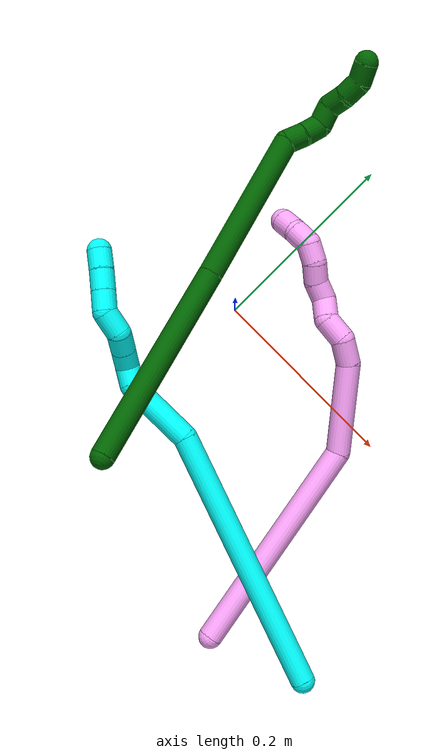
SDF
<sdf version="1.7">
 <world name="default">
  <model name="3">
   <static>0</static>
   <link name="3">
    <collision name="collision-cylinder-e_1_1_4">
     <pose>-0.076578 0.07604 -0.08519 -2.41288 -0.590733 1.34679</pose>
     <geometry><cylinder><radius>0.0125</radius><length>0.27498</length></cylinder></geometry>
     <surface>
      <friction><ode><mu>1.16</mu><mu2>1.16</mu2><slip1>0</slip1><slip2>0</slip2></ode></friction>
      <contact><ode><kp>1e+06</kp><kd>1</kd><max_vel>0</max_vel><min_depth>0.001</min_depth></ode></contact>
     </surface>
    </collision>
    <visual name="visual-cylinder-e_1_1_4">
     <pose>-0.076578 0.07604 -0.08519 -2.41288 -0.590733 1.34679</pose>
     <geometry><cylinder><radius>0.0125</radius><length>0.27498</length></cylinder></geometry>
     <material><ambient>0.003922 1 0.996078 1</ambient></material>
    </visual>
    <collision name="collision-cylinder-e_2_4_5">
     <pose>-0.167015 0.182428 -0.186576 -2.06104 -0.382999 0.625258</pose>
     <geometry><cylinder><radius>0.0125</radius><length>0.074173</length></cylinder></geometry>
     <surface>
      <friction><ode><mu>1.16</mu><mu2>1.16</mu2><slip1>0</slip1><slip2>0</slip2></ode></friction>
      <contact><ode><kp>1e+06</kp><kd>1</kd><max_vel>0</max_vel><min_depth>0.001</min_depth></ode></contact>
     </surface>
    </collision>
    <visual name="visual-cylinder-e_2_4_5">
     <pose>-0.167015 0.182428 -0.186576 -2.06104 -0.382999 0.625258</pose>
     <geometry><cylinder><radius>0.0125</radius><length>0.074173</length></cylinder></geometry>
     <material><ambient>0.003922 1 0.996078 1</ambient></material>
    </visual>
    <collision name="collision-cylinder-e_3_5_6">
     <pose>-0.188558 0.217229 -0.208081 -2.44352 -0.837008 1.77007</pose>
     <geometry><cylinder><radius>0.0125</radius><length>0.020694</length></cylinder></geometry>
     <surface>
      <friction><ode><mu>1.16</mu><mu2>1.16</mu2><slip1>0</slip1><slip2>0</slip2></ode></friction>
      <contact><ode><kp>1e+06</kp><kd>1</kd><max_vel>0</max_vel><min_depth>0.001</min_depth></ode></contact>
     </surface>
    </collision>
    <visual name="visual-cylinder-e_3_5_6">
     <pose>-0.188558 0.217229 -0.208081 -2.44352 -0.837008 1.77007</pose>
     <geometry><cylinder><radius>0.0125</radius><length>0.020694</length></cylinder></geometry>
     <material><ambient>0.003922 1 0.996078 1</ambient></material>
    </visual>
    <collision name="collision-cylinder-e_4_6_7">
     <pose>-0.198718 0.222928 -0.223744 -3.02193 -0.233095 2.19572</pose>
     <geometry><cylinder><radius>0.0125</radius><length>0.021438</length></cylinder></geometry>
     <surface>
      <friction><ode><mu>1.16</mu><mu2>1.16</mu2><slip1>0</slip1><slip2>0</slip2></ode></friction>
      <contact><ode><kp>1e+06</kp><kd>1</kd><max_vel>0</max_vel><min_depth>0.001</min_depth></ode></contact>
     </surface>
    </collision>
    <visual name="visual-cylinder-e_4_6_7">
     <pose>-0.198718 0.222928 -0.223744 -3.02193 -0.233095 2.19572</pose>
     <geometry><cylinder><radius>0.0125</radius><length>0.021438</length></cylinder></geometry>
     <material><ambient>0.003922 1 0.996078 1</ambient></material>
    </visual>
    <collision name="collision-cylinder-e_5_7_8">
     <pose>-0.20347 0.225459 -0.244186 -3.01475 -0.220138 2.09845</pose>
     <geometry><cylinder><radius>0.0125</radius><length>0.020843</length></cylinder></geometry>
     <surface>
      <friction><ode><mu>1.16</mu><mu2>1.16</mu2><slip1>0</slip1><slip2>0</slip2></ode></friction>
      <contact><ode><kp>1e+06</kp><kd>1</kd><max_vel>0</max_vel><min_depth>0.001</min_depth></ode></contact>
     </surface>
    </collision>
    <visual name="visual-cylinder-e_5_7_8">
     <pose>-0.20347 0.225459 -0.244186 -3.01475 -0.220138 2.09845</pose>
     <geometry><cylinder><radius>0.0125</radius><length>0.020843</length></cylinder></geometry>
     <material><ambient>0.003922 1 0.996078 1</ambient></material>
    </visual>
    <collision name="collision-cylinder-e_6_8_9">
     <pose>-0.210575 0.234311 -0.262698 -2.4098 -0.403171 0.979971</pose>
     <geometry><cylinder><radius>0.0125</radius><length>0.024616</length></cylinder></geometry>
     <surface>
      <friction><ode><mu>1.16</mu><mu2>1.16</mu2><slip1>0</slip1><slip2>0</slip2></ode></friction>
      <contact><ode><kp>1e+06</kp><kd>1</kd><max_vel>0</max_vel><min_depth>0.001</min_depth></ode></contact>
     </surface>
    </collision>
    <visual name="visual-cylinder-e_6_8_9">
     <pose>-0.210575 0.234311 -0.262698 -2.4098 -0.403171 0.979971</pose>
     <geometry><cylinder><radius>0.0125</radius><length>0.024616</length></cylinder></geometry>
     <material><ambient>0.003922 1 0.996078 1</ambient></material>
    </visual>
    <collision name="collision-cylinder-e_7_9_10">
     <pose>-0.224362 0.245024 -0.275867 -2.55603 -1.00441 2.13758</pose>
     <geometry><cylinder><radius>0.0125</radius><length>0.021232</length></cylinder></geometry>
     <surface>
      <friction><ode><mu>1.16</mu><mu2>1.16</mu2><slip1>0</slip1><slip2>0</slip2></ode></friction>
      <contact><ode><kp>1e+06</kp><kd>1</kd><max_vel>0</max_vel><min_depth>0.001</min_depth></ode></contact>
     </surface>
    </collision>
    <visual name="visual-cylinder-e_7_9_10">
     <pose>-0.224362 0.245024 -0.275867 -2.55603 -1.00441 2.13758</pose>
     <geometry><cylinder><radius>0.0125</radius><length>0.021232</length></cylinder></geometry>
     <material><ambient>0.003922 1 0.996078 1</ambient></material>
    </visual>
    <collision name="collision-cylinder-e_8_10_11">
     <pose>-0.242226 0.251381 -0.285479 -2.55833 -0.991393 2.12801</pose>
     <geometry><cylinder><radius>0.0125</radius><length>0.021287</length></cylinder></geometry>
     <surface>
      <friction><ode><mu>1.16</mu><mu2>1.16</mu2><slip1>0</slip1><slip2>0</slip2></ode></friction>
      <contact><ode><kp>1e+06</kp><kd>1</kd><max_vel>0</max_vel><min_depth>0.001</min_depth></ode></contact>
     </surface>
    </collision>
    <visual name="visual-cylinder-e_8_10_11">
     <pose>-0.242226 0.251381 -0.285479 -2.55833 -0.991393 2.12801</pose>
     <geometry><cylinder><radius>0.0125</radius><length>0.021287</length></cylinder></geometry>
     <material><ambient>0.003922 1 0.996078 1</ambient></material>
    </visual>
    <collision name="collision-cylinder-e_9_11_2">
     <pose>-0.259922 0.258246 -0.294453 -2.4147 -1.01165 1.93813</pose>
     <geometry><cylinder><radius>0.0125</radius><length>0.020738</length></cylinder></geometry>
     <surface>
      <friction><ode><mu>1.16</mu><mu2>1.16</mu2><slip1>0</slip1><slip2>0</slip2></ode></friction>
      <contact><ode><kp>1e+06</kp><kd>1</kd><max_vel>0</max_vel><min_depth>0.001</min_depth></ode></contact>
     </surface>
    </collision>
    <visual name="visual-cylinder-e_9_11_2">
     <pose>-0.259922 0.258246 -0.294453 -2.4147 -1.01165 1.93813</pose>
     <geometry><cylinder><radius>0.0125</radius><length>0.020738</length></cylinder></geometry>
     <material><ambient>0.003922 1 0.996078 1</ambient></material>
    </visual>
    <collision name="collision-sphere-2">
     <pose>-0.268712 0.261901 -0.298563 0 -0 0</pose>
     <geometry><sphere><radius>0.0125</radius></sphere></geometry>
     <surface>
      <friction><ode><mu>1.16</mu><mu2>1.16</mu2><slip1>0</slip1><slip2>0</slip2></ode></friction>
      <contact><ode><kp>1e+06</kp><kd>1</kd><max_vel>0</max_vel><min_depth>0.001</min_depth></ode></contact>
     </surface>
    </collision>
    <visual name="visual-sphere-2">
     <pose>-0.268712 0.261901 -0.298563 0 -0 0</pose>
     <geometry><sphere><radius>0.0125</radius></sphere></geometry>
     <material><ambient>0.003922 1 0.996078 1</ambient></material>
    </visual>
    <collision name="collision-sphere-11">
     <pose>-0.251132 0.254591 -0.290343 0 -0 0</pose>
     <geometry><sphere><radius>0.0125</radius></sphere></geometry>
     <surface>
      <friction><ode><mu>1.16</mu><mu2>1.16</mu2><slip1>0</slip1><slip2>0</slip2></ode></friction>
      <contact><ode><kp>1e+06</kp><kd>1</kd><max_vel>0</max_vel><min_depth>0.001</min_depth></ode></contact>
     </surface>
    </collision>
    <visual name="visual-sphere-11">
     <pose>-0.251132 0.254591 -0.290343 0 -0 0</pose>
     <geometry><sphere><radius>0.0125</radius></sphere></geometry>
     <material><ambient>0.003922 1 0.996078 1</ambient></material>
    </visual>
    <collision name="collision-sphere-10">
     <pose>-0.23332 0.248172 -0.280615 0 -0 0</pose>
     <geometry><sphere><radius>0.0125</radius></sphere></geometry>
     <surface>
      <friction><ode><mu>1.16</mu><mu2>1.16</mu2><slip1>0</slip1><slip2>0</slip2></ode></friction>
      <contact><ode><kp>1e+06</kp><kd>1</kd><max_vel>0</max_vel><min_depth>0.001</min_depth></ode></contact>
     </surface>
    </collision>
    <visual name="visual-sphere-10">
     <pose>-0.23332 0.248172 -0.280615 0 -0 0</pose>
     <geometry><sphere><radius>0.0125</radius></sphere></geometry>
     <material><ambient>0.003922 1 0.996078 1</ambient></material>
    </visual>
    <collision name="collision-sphere-9">
     <pose>-0.215403 0.241876 -0.27112 0 -0 0</pose>
     <geometry><sphere><radius>0.0125</radius></sphere></geometry>
     <surface>
      <friction><ode><mu>1.16</mu><mu2>1.16</mu2><slip1>0</slip1><slip2>0</slip2></ode></friction>
      <contact><ode><kp>1e+06</kp><kd>1</kd><max_vel>0</max_vel><min_depth>0.001</min_depth></ode></contact>
     </surface>
    </collision>
    <visual name="visual-sphere-9">
     <pose>-0.215403 0.241876 -0.27112 0 -0 0</pose>
     <geometry><sphere><radius>0.0125</radius></sphere></geometry>
     <material><ambient>0.003922 1 0.996078 1</ambient></material>
    </visual>
    <collision name="collision-sphere-4">
     <pose>-0.153156 0.15208 -0.170379 0 -0 0</pose>
     <geometry><sphere><radius>0.0125</radius></sphere></geometry>
     <surface>
      <friction><ode><mu>1.16</mu><mu2>1.16</mu2><slip1>0</slip1><slip2>0</slip2></ode></friction>
      <contact><ode><kp>1e+06</kp><kd>1</kd><max_vel>0</max_vel><min_depth>0.001</min_depth></ode></contact>
     </surface>
    </collision>
    <visual name="visual-sphere-4">
     <pose>-0.153156 0.15208 -0.170379 0 -0 0</pose>
     <geometry><sphere><radius>0.0125</radius></sphere></geometry>
     <material><ambient>0.003922 1 0.996078 1</ambient></material>
    </visual>
    <collision name="collision-sphere-1">
     <geometry><sphere><radius>0.0125</radius></sphere></geometry>
     <surface>
      <friction><ode><mu>1.16</mu><mu2>1.16</mu2><slip1>0</slip1><slip2>0</slip2></ode></friction>
      <contact><ode><kp>1e+06</kp><kd>1</kd><max_vel>0</max_vel><min_depth>0.001</min_depth></ode></contact>
     </surface>
    </collision>
    <visual name="visual-sphere-1">
     <geometry><sphere><radius>0.0125</radius></sphere></geometry>
     <material><ambient>0.003922 1 0.996078 1</ambient></material>
    </visual>
    <collision name="collision-sphere-8">
     <pose>-0.205746 0.226746 -0.254275 0 -0 0</pose>
     <geometry><sphere><radius>0.0125</radius></sphere></geometry>
     <surface>
      <friction><ode><mu>1.16</mu><mu2>1.16</mu2><slip1>0</slip1><slip2>0</slip2></ode></friction>
      <contact><ode><kp>1e+06</kp><kd>1</kd><max_vel>0</max_vel><min_depth>0.001</min_depth></ode></contact>
     </surface>
    </collision>
    <visual name="visual-sphere-8">
     <pose>-0.205746 0.226746 -0.254275 0 -0 0</pose>
     <geometry><sphere><radius>0.0125</radius></sphere></geometry>
     <material><ambient>0.003922 1 0.996078 1</ambient></material>
    </visual>
    <collision name="collision-sphere-5">
     <pose>-0.180874 0.212775 -0.202772 0 -0 0</pose>
     <geometry><sphere><radius>0.0125</radius></sphere></geometry>
     <surface>
      <friction><ode><mu>1.16</mu><mu2>1.16</mu2><slip1>0</slip1><slip2>0</slip2></ode></friction>
      <contact><ode><kp>1e+06</kp><kd>1</kd><max_vel>0</max_vel><min_depth>0.001</min_depth></ode></contact>
     </surface>
    </collision>
    <visual name="visual-sphere-5">
     <pose>-0.180874 0.212775 -0.202772 0 -0 0</pose>
     <geometry><sphere><radius>0.0125</radius></sphere></geometry>
     <material><ambient>0.003922 1 0.996078 1</ambient></material>
    </visual>
    <collision name="collision-sphere-6">
     <pose>-0.196242 0.221683 -0.213389 0 -0 0</pose>
     <geometry><sphere><radius>0.0125</radius></sphere></geometry>
     <surface>
      <friction><ode><mu>1.16</mu><mu2>1.16</mu2><slip1>0</slip1><slip2>0</slip2></ode></friction>
      <contact><ode><kp>1e+06</kp><kd>1</kd><max_vel>0</max_vel><min_depth>0.001</min_depth></ode></contact>
     </surface>
    </collision>
    <visual name="visual-sphere-6">
     <pose>-0.196242 0.221683 -0.213389 0 -0 0</pose>
     <geometry><sphere><radius>0.0125</radius></sphere></geometry>
     <material><ambient>0.003922 1 0.996078 1</ambient></material>
    </visual>
    <collision name="collision-sphere-7">
     <pose>-0.201194 0.224173 -0.234098 0 -0 0</pose>
     <geometry><sphere><radius>0.0125</radius></sphere></geometry>
     <surface>
      <friction><ode><mu>1.16</mu><mu2>1.16</mu2><slip1>0</slip1><slip2>0</slip2></ode></friction>
      <contact><ode><kp>1e+06</kp><kd>1</kd><max_vel>0</max_vel><min_depth>0.001</min_depth></ode></contact>
     </surface>
    </collision>
    <visual name="visual-sphere-7">
     <pose>-0.201194 0.224173 -0.234098 0 -0 0</pose>
     <geometry><sphere><radius>0.0125</radius></sphere></geometry>
     <material><ambient>0.003922 1 0.996078 1</ambient></material>
    </visual>
    <inertial>
     <pose>-0.132684 0.140182 -0.151927 0 -0 0</pose>
     <mass>0.5</mass>
     <inertia><ixx>0.001766</ixx><ixy>0</ixy><ixz>0</ixz><iyy>0.001801</iyy><iyz>0</iyz><izz>-3e-05</izz></inertia>
    </inertial>
   </link>
   <pose>0.316294 -0.217285 0.029011 -2.84912 -0.573774 -1.12468</pose>
  </model>
  <model name="4">
   <static>0</static>
   <link name="4">
    <collision name="collision-cylinder-e_1_1_4">
     <pose>-0.030234 0.098643 0.050803 -1.0952 -0.266031 0.162832</pose>
     <geometry><cylinder><radius>0.0125</radius><length>0.230003</length></cylinder></geometry>
     <surface>
      <friction><ode><mu>1.16</mu><mu2>1.16</mu2><slip1>0</slip1><slip2>0</slip2></ode></friction>
      <contact><ode><kp>1e+06</kp><kd>1</kd><max_vel>0</max_vel><min_depth>0.001</min_depth></ode></contact>
     </surface>
    </collision>
    <visual name="visual-cylinder-e_1_1_4">
     <pose>-0.030234 0.098643 0.050803 -1.0952 -0.266031 0.162832</pose>
     <geometry><cylinder><radius>0.0125</radius><length>0.230003</length></cylinder></geometry>
     <material><ambient>1 0.65098 0.996078 1</ambient></material>
    </visual>
    <collision name="collision-cylinder-e_2_4_5">
     <pose>-0.093665 0.22336 0.121831 -0.911065 -0.788375 0.402049</pose>
     <geometry><cylinder><radius>0.0125</radius><length>0.093615</length></cylinder></geometry>
     <surface>
      <friction><ode><mu>1.16</mu><mu2>1.16</mu2><slip1>0</slip1><slip2>0</slip2></ode></friction>
      <contact><ode><kp>1e+06</kp><kd>1</kd><max_vel>0</max_vel><min_depth>0.001</min_depth></ode></contact>
     </surface>
    </collision>
    <visual name="visual-cylinder-e_2_4_5">
     <pose>-0.093665 0.22336 0.121831 -0.911065 -0.788375 0.402049</pose>
     <geometry><cylinder><radius>0.0125</radius><length>0.093615</length></cylinder></geometry>
     <material><ambient>1 0.65098 0.996078 1</ambient></material>
    </visual>
    <collision name="collision-cylinder-e_3_5_6">
     <pose>-0.138952 0.252771 0.146995 -0.594214 -1.11276 0.37632</pose>
     <geometry><cylinder><radius>0.0125</radius><length>0.026959</length></cylinder></geometry>
     <surface>
      <friction><ode><mu>1.16</mu><mu2>1.16</mu2><slip1>0</slip1><slip2>0</slip2></ode></friction>
      <contact><ode><kp>1e+06</kp><kd>1</kd><max_vel>0</max_vel><min_depth>0.001</min_depth></ode></contact>
     </surface>
    </collision>
    <visual name="visual-cylinder-e_3_5_6">
     <pose>-0.138952 0.252771 0.146995 -0.594214 -1.11276 0.37632</pose>
     <geometry><cylinder><radius>0.0125</radius><length>0.026959</length></cylinder></geometry>
     <material><ambient>1 0.65098 0.996078 1</ambient></material>
    </visual>
    <collision name="collision-cylinder-e_4_6_7">
     <pose>-0.163405 0.257361 0.149875 -2.59537 -1.37825 2.48613</pose>
     <geometry><cylinder><radius>0.0125</radius><length>0.025191</length></cylinder></geometry>
     <surface>
      <friction><ode><mu>1.16</mu><mu2>1.16</mu2><slip1>0</slip1><slip2>0</slip2></ode></friction>
      <contact><ode><kp>1e+06</kp><kd>1</kd><max_vel>0</max_vel><min_depth>0.001</min_depth></ode></contact>
     </surface>
    </collision>
    <visual name="visual-cylinder-e_4_6_7">
     <pose>-0.163405 0.257361 0.149875 -2.59537 -1.37825 2.48613</pose>
     <geometry><cylinder><radius>0.0125</radius><length>0.025191</length></cylinder></geometry>
     <material><ambient>1 0.65098 0.996078 1</ambient></material>
    </visual>
    <collision name="collision-cylinder-e_5_7_8">
     <pose>-0.183651 0.266767 0.145635 -1.83206 -0.751251 0.949</pose>
     <geometry><cylinder><radius>0.0125</radius><length>0.023099</length></cylinder></geometry>
     <surface>
      <friction><ode><mu>1.16</mu><mu2>1.16</mu2><slip1>0</slip1><slip2>0</slip2></ode></friction>
      <contact><ode><kp>1e+06</kp><kd>1</kd><max_vel>0</max_vel><min_depth>0.001</min_depth></ode></contact>
     </surface>
    </collision>
    <visual name="visual-cylinder-e_5_7_8">
     <pose>-0.183651 0.266767 0.145635 -1.83206 -0.751251 0.949</pose>
     <geometry><cylinder><radius>0.0125</radius><length>0.023099</length></cylinder></geometry>
     <material><ambient>1 0.65098 0.996078 1</ambient></material>
    </visual>
    <collision name="collision-cylinder-e_6_8_9">
     <pose>-0.201484 0.276512 0.145778 -0.600474 -1.29494 0.459961</pose>
     <geometry><cylinder><radius>0.0125</radius><length>0.020681</length></cylinder></geometry>
     <surface>
      <friction><ode><mu>1.16</mu><mu2>1.16</mu2><slip1>0</slip1><slip2>0</slip2></ode></friction>
      <contact><ode><kp>1e+06</kp><kd>1</kd><max_vel>0</max_vel><min_depth>0.001</min_depth></ode></contact>
     </surface>
    </collision>
    <visual name="visual-cylinder-e_6_8_9">
     <pose>-0.201484 0.276512 0.145778 -0.600474 -1.29494 0.459961</pose>
     <geometry><cylinder><radius>0.0125</radius><length>0.020681</length></cylinder></geometry>
     <material><ambient>1 0.65098 0.996078 1</ambient></material>
    </visual>
    <collision name="collision-cylinder-e_7_9_10">
     <pose>-0.219685 0.281166 0.153049 -0.554285 -0.956736 0.292898</pose>
     <geometry><cylinder><radius>0.0125</radius><length>0.020193</length></cylinder></geometry>
     <surface>
      <friction><ode><mu>1.16</mu><mu2>1.16</mu2><slip1>0</slip1><slip2>0</slip2></ode></friction>
      <contact><ode><kp>1e+06</kp><kd>1</kd><max_vel>0</max_vel><min_depth>0.001</min_depth></ode></contact>
     </surface>
    </collision>
    <visual name="visual-cylinder-e_7_9_10">
     <pose>-0.219685 0.281166 0.153049 -0.554285 -0.956736 0.292898</pose>
     <geometry><cylinder><radius>0.0125</radius><length>0.020193</length></cylinder></geometry>
     <material><ambient>1 0.65098 0.996078 1</ambient></material>
    </visual>
    <collision name="collision-cylinder-e_8_10_11">
     <pose>-0.23726 0.287542 0.159776 -1.07787 -1.18718 0.76704</pose>
     <geometry><cylinder><radius>0.0125</radius><length>0.020107</length></cylinder></geometry>
     <surface>
      <friction><ode><mu>1.16</mu><mu2>1.16</mu2><slip1>0</slip1><slip2>0</slip2></ode></friction>
      <contact><ode><kp>1e+06</kp><kd>1</kd><max_vel>0</max_vel><min_depth>0.001</min_depth></ode></contact>
     </surface>
    </collision>
    <visual name="visual-cylinder-e_8_10_11">
     <pose>-0.23726 0.287542 0.159776 -1.07787 -1.18718 0.76704</pose>
     <geometry><cylinder><radius>0.0125</radius><length>0.020107</length></cylinder></geometry>
     <material><ambient>1 0.65098 0.996078 1</ambient></material>
    </visual>
    <collision name="collision-cylinder-e_9_11_12">
     <pose>-0.255629 0.292173 0.157456 -2.83112 -1.12658 2.65578</pose>
     <geometry><cylinder><radius>0.0125</radius><length>0.020038</length></cylinder></geometry>
     <surface>
      <friction><ode><mu>1.16</mu><mu2>1.16</mu2><slip1>0</slip1><slip2>0</slip2></ode></friction>
      <contact><ode><kp>1e+06</kp><kd>1</kd><max_vel>0</max_vel><min_depth>0.001</min_depth></ode></contact>
     </surface>
    </collision>
    <visual name="visual-cylinder-e_9_11_12">
     <pose>-0.255629 0.292173 0.157456 -2.83112 -1.12658 2.65578</pose>
     <geometry><cylinder><radius>0.0125</radius><length>0.020038</length></cylinder></geometry>
     <material><ambient>1 0.65098 0.996078 1</ambient></material>
    </visual>
    <collision name="collision-cylinder-e_10_12_2">
     <pose>-0.271639 0.296343 0.146686 -2.73713 -0.764863 2.19877</pose>
     <geometry><cylinder><radius>0.0125</radius><length>0.020113</length></cylinder></geometry>
     <surface>
      <friction><ode><mu>1.16</mu><mu2>1.16</mu2><slip1>0</slip1><slip2>0</slip2></ode></friction>
      <contact><ode><kp>1e+06</kp><kd>1</kd><max_vel>0</max_vel><min_depth>0.001</min_depth></ode></contact>
     </surface>
    </collision>
    <visual name="visual-cylinder-e_10_12_2">
     <pose>-0.271639 0.296343 0.146686 -2.73713 -0.764863 2.19877</pose>
     <geometry><cylinder><radius>0.0125</radius><length>0.020113</length></cylinder></geometry>
     <material><ambient>1 0.65098 0.996078 1</ambient></material>
    </visual>
    <collision name="collision-sphere-2">
     <pose>-0.278603 0.299199 0.140016 0 -0 0</pose>
     <geometry><sphere><radius>0.0125</radius></sphere></geometry>
     <surface>
      <friction><ode><mu>1.16</mu><mu2>1.16</mu2><slip1>0</slip1><slip2>0</slip2></ode></friction>
      <contact><ode><kp>1e+06</kp><kd>1</kd><max_vel>0</max_vel><min_depth>0.001</min_depth></ode></contact>
     </surface>
    </collision>
    <visual name="visual-sphere-2">
     <pose>-0.278603 0.299199 0.140016 0 -0 0</pose>
     <geometry><sphere><radius>0.0125</radius></sphere></geometry>
     <material><ambient>1 0.65098 0.996078 1</ambient></material>
    </visual>
    <collision name="collision-sphere-12">
     <pose>-0.264676 0.293488 0.153357 0 -0 0</pose>
     <geometry><sphere><radius>0.0125</radius></sphere></geometry>
     <surface>
      <friction><ode><mu>1.16</mu><mu2>1.16</mu2><slip1>0</slip1><slip2>0</slip2></ode></friction>
      <contact><ode><kp>1e+06</kp><kd>1</kd><max_vel>0</max_vel><min_depth>0.001</min_depth></ode></contact>
     </surface>
    </collision>
    <visual name="visual-sphere-12">
     <pose>-0.264676 0.293488 0.153357 0 -0 0</pose>
     <geometry><sphere><radius>0.0125</radius></sphere></geometry>
     <material><ambient>1 0.65098 0.996078 1</ambient></material>
    </visual>
    <collision name="collision-sphere-11">
     <pose>-0.246582 0.290857 0.161556 0 -0 0</pose>
     <geometry><sphere><radius>0.0125</radius></sphere></geometry>
     <surface>
      <friction><ode><mu>1.16</mu><mu2>1.16</mu2><slip1>0</slip1><slip2>0</slip2></ode></friction>
      <contact><ode><kp>1e+06</kp><kd>1</kd><max_vel>0</max_vel><min_depth>0.001</min_depth></ode></contact>
     </surface>
    </collision>
    <visual name="visual-sphere-11">
     <pose>-0.246582 0.290857 0.161556 0 -0 0</pose>
     <geometry><sphere><radius>0.0125</radius></sphere></geometry>
     <material><ambient>1 0.65098 0.996078 1</ambient></material>
    </visual>
    <collision name="collision-sphere-10">
     <pose>-0.227937 0.284228 0.157995 0 -0 0</pose>
     <geometry><sphere><radius>0.0125</radius></sphere></geometry>
     <surface>
      <friction><ode><mu>1.16</mu><mu2>1.16</mu2><slip1>0</slip1><slip2>0</slip2></ode></friction>
      <contact><ode><kp>1e+06</kp><kd>1</kd><max_vel>0</max_vel><min_depth>0.001</min_depth></ode></contact>
     </surface>
    </collision>
    <visual name="visual-sphere-10">
     <pose>-0.227937 0.284228 0.157995 0 -0 0</pose>
     <geometry><sphere><radius>0.0125</radius></sphere></geometry>
     <material><ambient>1 0.65098 0.996078 1</ambient></material>
    </visual>
    <collision name="collision-sphere-9">
     <pose>-0.211433 0.278104 0.148102 0 -0 0</pose>
     <geometry><sphere><radius>0.0125</radius></sphere></geometry>
     <surface>
      <friction><ode><mu>1.16</mu><mu2>1.16</mu2><slip1>0</slip1><slip2>0</slip2></ode></friction>
      <contact><ode><kp>1e+06</kp><kd>1</kd><max_vel>0</max_vel><min_depth>0.001</min_depth></ode></contact>
     </surface>
    </collision>
    <visual name="visual-sphere-9">
     <pose>-0.211433 0.278104 0.148102 0 -0 0</pose>
     <geometry><sphere><radius>0.0125</radius></sphere></geometry>
     <material><ambient>1 0.65098 0.996078 1</ambient></material>
    </visual>
    <collision name="collision-sphere-4">
     <pose>-0.060469 0.197285 0.101606 0 -0 0</pose>
     <geometry><sphere><radius>0.0125</radius></sphere></geometry>
     <surface>
      <friction><ode><mu>1.16</mu><mu2>1.16</mu2><slip1>0</slip1><slip2>0</slip2></ode></friction>
      <contact><ode><kp>1e+06</kp><kd>1</kd><max_vel>0</max_vel><min_depth>0.001</min_depth></ode></contact>
     </surface>
    </collision>
    <visual name="visual-sphere-4">
     <pose>-0.060469 0.197285 0.101606 0 -0 0</pose>
     <geometry><sphere><radius>0.0125</radius></sphere></geometry>
     <material><ambient>1 0.65098 0.996078 1</ambient></material>
    </visual>
    <collision name="collision-sphere-1">
     <geometry><sphere><radius>0.0125</radius></sphere></geometry>
     <surface>
      <friction><ode><mu>1.16</mu><mu2>1.16</mu2><slip1>0</slip1><slip2>0</slip2></ode></friction>
      <contact><ode><kp>1e+06</kp><kd>1</kd><max_vel>0</max_vel><min_depth>0.001</min_depth></ode></contact>
     </surface>
    </collision>
    <visual name="visual-sphere-1">
     <geometry><sphere><radius>0.0125</radius></sphere></geometry>
     <material><ambient>1 0.65098 0.996078 1</ambient></material>
    </visual>
    <collision name="collision-sphere-8">
     <pose>-0.191534 0.274921 0.143455 0 -0 0</pose>
     <geometry><sphere><radius>0.0125</radius></sphere></geometry>
     <surface>
      <friction><ode><mu>1.16</mu><mu2>1.16</mu2><slip1>0</slip1><slip2>0</slip2></ode></friction>
      <contact><ode><kp>1e+06</kp><kd>1</kd><max_vel>0</max_vel><min_depth>0.001</min_depth></ode></contact>
     </surface>
    </collision>
    <visual name="visual-sphere-8">
     <pose>-0.191534 0.274921 0.143455 0 -0 0</pose>
     <geometry><sphere><radius>0.0125</radius></sphere></geometry>
     <material><ambient>1 0.65098 0.996078 1</ambient></material>
    </visual>
    <collision name="collision-sphere-5">
     <pose>-0.126862 0.249434 0.142057 0 -0 0</pose>
     <geometry><sphere><radius>0.0125</radius></sphere></geometry>
     <surface>
      <friction><ode><mu>1.16</mu><mu2>1.16</mu2><slip1>0</slip1><slip2>0</slip2></ode></friction>
      <contact><ode><kp>1e+06</kp><kd>1</kd><max_vel>0</max_vel><min_depth>0.001</min_depth></ode></contact>
     </surface>
    </collision>
    <visual name="visual-sphere-5">
     <pose>-0.126862 0.249434 0.142057 0 -0 0</pose>
     <geometry><sphere><radius>0.0125</radius></sphere></geometry>
     <material><ambient>1 0.65098 0.996078 1</ambient></material>
    </visual>
    <collision name="collision-sphere-6">
     <pose>-0.151042 0.256108 0.151934 0 -0 0</pose>
     <geometry><sphere><radius>0.0125</radius></sphere></geometry>
     <surface>
      <friction><ode><mu>1.16</mu><mu2>1.16</mu2><slip1>0</slip1><slip2>0</slip2></ode></friction>
      <contact><ode><kp>1e+06</kp><kd>1</kd><max_vel>0</max_vel><min_depth>0.001</min_depth></ode></contact>
     </surface>
    </collision>
    <visual name="visual-sphere-6">
     <pose>-0.151042 0.256108 0.151934 0 -0 0</pose>
     <geometry><sphere><radius>0.0125</radius></sphere></geometry>
     <material><ambient>1 0.65098 0.996078 1</ambient></material>
    </visual>
    <collision name="collision-sphere-7">
     <pose>-0.175768 0.258613 0.147815 0 -0 0</pose>
     <geometry><sphere><radius>0.0125</radius></sphere></geometry>
     <surface>
      <friction><ode><mu>1.16</mu><mu2>1.16</mu2><slip1>0</slip1><slip2>0</slip2></ode></friction>
      <contact><ode><kp>1e+06</kp><kd>1</kd><max_vel>0</max_vel><min_depth>0.001</min_depth></ode></contact>
     </surface>
    </collision>
    <visual name="visual-sphere-7">
     <pose>-0.175768 0.258613 0.147815 0 -0 0</pose>
     <geometry><sphere><radius>0.0125</radius></sphere></geometry>
     <material><ambient>1 0.65098 0.996078 1</ambient></material>
    </visual>
    <inertial>
     <pose>-0.103573 0.184101 0.099232 0 -0 0</pose>
     <mass>0.5</mass>
     <inertia>
      <ixx>0.001185</ixx>
      <ixy>0</ixy>
      <ixz>0</ixz>
      <iyy>0.000777</iyy>
      <iyz>0</iyz>
      <izz>-0.000578</izz>
     </inertia>
    </inertial>
   </link>
   <pose>0.220622 -0.254683 0.011524 -0.514384 0.140909 -0.088011</pose>
  </model>
  <model name="6">
   <static>0</static>
   <link name="6">
    <collision name="collision-cylinder-e_1_1_4">
     <pose>-0.007161 0.03597 -0.100708 -2.79854 -0.06686 0.381416</pose>
     <geometry><cylinder><radius>0.0125</radius><length>0.214357</length></cylinder></geometry>
     <surface>
      <friction><ode><mu>1.16</mu><mu2>1.16</mu2><slip1>0</slip1><slip2>0</slip2></ode></friction>
      <contact><ode><kp>1e+06</kp><kd>1</kd><max_vel>0</max_vel><min_depth>0.001</min_depth></ode></contact>
     </surface>
    </collision>
    <visual name="visual-cylinder-e_1_1_4">
     <pose>-0.007161 0.03597 -0.100708 -2.79854 -0.06686 0.381416</pose>
     <geometry><cylinder><radius>0.0125</radius><length>0.214357</length></cylinder></geometry>
     <material><ambient>0 0.392157 0.003922 1</ambient></material>
    </visual>
    <collision name="collision-cylinder-e_2_4_5">
     <pose>-0.023268 0.10598 -0.27426 -2.70445 -0.110821 0.489427</pose>
     <geometry><cylinder><radius>0.0125</radius><length>0.161804</length></cylinder></geometry>
     <surface>
      <friction><ode><mu>1.16</mu><mu2>1.16</mu2><slip1>0</slip1><slip2>0</slip2></ode></friction>
      <contact><ode><kp>1e+06</kp><kd>1</kd><max_vel>0</max_vel><min_depth>0.001</min_depth></ode></contact>
     </surface>
    </collision>
    <visual name="visual-cylinder-e_2_4_5">
     <pose>-0.023268 0.10598 -0.27426 -2.70445 -0.110821 0.489427</pose>
     <geometry><cylinder><radius>0.0125</radius><length>0.161804</length></cylinder></geometry>
     <material><ambient>0 0.392157 0.003922 1</ambient></material>
    </visual>
    <collision name="collision-cylinder-e_3_5_6">
     <pose>-0.02757 0.145973 -0.354037 -2.43199 0.470379 -1.14824</pose>
     <geometry><cylinder><radius>0.0125</radius><length>0.0205</length></cylinder></geometry>
     <surface>
      <friction><ode><mu>1.16</mu><mu2>1.16</mu2><slip1>0</slip1><slip2>0</slip2></ode></friction>
      <contact><ode><kp>1e+06</kp><kd>1</kd><max_vel>0</max_vel><min_depth>0.001</min_depth></ode></contact>
     </surface>
    </collision>
    <visual name="visual-cylinder-e_3_5_6">
     <pose>-0.02757 0.145973 -0.354037 -2.43199 0.470379 -1.14824</pose>
     <geometry><cylinder><radius>0.0125</radius><length>0.0205</length></cylinder></geometry>
     <material><ambient>0 0.392157 0.003922 1</ambient></material>
    </visual>
    <collision name="collision-cylinder-e_4_6_7">
     <pose>-0.019113 0.156988 -0.368979 -2.57805 0.382385 -1.17875</pose>
     <geometry><cylinder><radius>0.0125</radius><length>0.020427</length></cylinder></geometry>
     <surface>
      <friction><ode><mu>1.16</mu><mu2>1.16</mu2><slip1>0</slip1><slip2>0</slip2></ode></friction>
      <contact><ode><kp>1e+06</kp><kd>1</kd><max_vel>0</max_vel><min_depth>0.001</min_depth></ode></contact>
     </surface>
    </collision>
    <visual name="visual-cylinder-e_4_6_7">
     <pose>-0.019113 0.156988 -0.368979 -2.57805 0.382385 -1.17875</pose>
     <geometry><cylinder><radius>0.0125</radius><length>0.020427</length></cylinder></geometry>
     <material><ambient>0 0.392157 0.003922 1</ambient></material>
    </visual>
    <collision name="collision-cylinder-e_5_7_8">
     <pose>-0.018271 0.169172 -0.384142 -2.35837 -0.28608 0.671166</pose>
     <geometry><cylinder><radius>0.0125</radius><length>0.021041</length></cylinder></geometry>
     <surface>
      <friction><ode><mu>1.16</mu><mu2>1.16</mu2><slip1>0</slip1><slip2>0</slip2></ode></friction>
      <contact><ode><kp>1e+06</kp><kd>1</kd><max_vel>0</max_vel><min_depth>0.001</min_depth></ode></contact>
     </surface>
    </collision>
    <visual name="visual-cylinder-e_5_7_8">
     <pose>-0.018271 0.169172 -0.384142 -2.35837 -0.28608 0.671166</pose>
     <geometry><cylinder><radius>0.0125</radius><length>0.021041</length></cylinder></geometry>
     <material><ambient>0 0.392157 0.003922 1</ambient></material>
    </visual>
    <collision name="collision-cylinder-e_6_8_9">
     <pose>-0.020153 0.186118 -0.393419 -1.78375 0.107733 -0.133448</pose>
     <geometry><cylinder><radius>0.0125</radius><length>0.020222</length></cylinder></geometry>
     <surface>
      <friction><ode><mu>1.16</mu><mu2>1.16</mu2><slip1>0</slip1><slip2>0</slip2></ode></friction>
      <contact><ode><kp>1e+06</kp><kd>1</kd><max_vel>0</max_vel><min_depth>0.001</min_depth></ode></contact>
     </surface>
    </collision>
    <visual name="visual-cylinder-e_6_8_9">
     <pose>-0.020153 0.186118 -0.393419 -1.78375 0.107733 -0.133448</pose>
     <geometry><cylinder><radius>0.0125</radius><length>0.020222</length></cylinder></geometry>
     <material><ambient>0 0.392157 0.003922 1</ambient></material>
    </visual>
    <collision name="collision-cylinder-e_7_9_10">
     <pose>-0.018943 0.205147 -0.400059 -2.02691 0.011942 -0.01916</pose>
     <geometry><cylinder><radius>0.0125</radius><length>0.020505</length></cylinder></geometry>
     <surface>
      <friction><ode><mu>1.16</mu><mu2>1.16</mu2><slip1>0</slip1><slip2>0</slip2></ode></friction>
      <contact><ode><kp>1e+06</kp><kd>1</kd><max_vel>0</max_vel><min_depth>0.001</min_depth></ode></contact>
     </surface>
    </collision>
    <visual name="visual-cylinder-e_7_9_10">
     <pose>-0.018943 0.205147 -0.400059 -2.02691 0.011942 -0.01916</pose>
     <geometry><cylinder><radius>0.0125</radius><length>0.020505</length></cylinder></geometry>
     <material><ambient>0 0.392157 0.003922 1</ambient></material>
    </visual>
    <collision name="collision-cylinder-e_8_10_2">
     <pose>-0.023676 0.222715 -0.408844 -2.04278 -0.477175 0.756232</pose>
     <geometry><cylinder><radius>0.0125</radius><length>0.021144</length></cylinder></geometry>
     <surface>
      <friction><ode><mu>1.16</mu><mu2>1.16</mu2><slip1>0</slip1><slip2>0</slip2></ode></friction>
      <contact><ode><kp>1e+06</kp><kd>1</kd><max_vel>0</max_vel><min_depth>0.001</min_depth></ode></contact>
     </surface>
    </collision>
    <visual name="visual-cylinder-e_8_10_2">
     <pose>-0.023676 0.222715 -0.408844 -2.04278 -0.477175 0.756232</pose>
     <geometry><cylinder><radius>0.0125</radius><length>0.021144</length></cylinder></geometry>
     <material><ambient>0 0.392157 0.003922 1</ambient></material>
    </visual>
    <collision name="collision-sphere-2">
     <pose>-0.028532 0.231079 -0.413113 0 -0 0</pose>
     <geometry><sphere><radius>0.0125</radius></sphere></geometry>
     <surface>
      <friction><ode><mu>1.16</mu><mu2>1.16</mu2><slip1>0</slip1><slip2>0</slip2></ode></friction>
      <contact><ode><kp>1e+06</kp><kd>1</kd><max_vel>0</max_vel><min_depth>0.001</min_depth></ode></contact>
     </surface>
    </collision>
    <visual name="visual-sphere-2">
     <pose>-0.028532 0.231079 -0.413113 0 -0 0</pose>
     <geometry><sphere><radius>0.0125</radius></sphere></geometry>
     <material><ambient>0 0.392157 0.003922 1</ambient></material>
    </visual>
    <collision name="collision-sphere-10">
     <pose>-0.018821 0.214351 -0.404574 0 -0 0</pose>
     <geometry><sphere><radius>0.0125</radius></sphere></geometry>
     <surface>
      <friction><ode><mu>1.16</mu><mu2>1.16</mu2><slip1>0</slip1><slip2>0</slip2></ode></friction>
      <contact><ode><kp>1e+06</kp><kd>1</kd><max_vel>0</max_vel><min_depth>0.001</min_depth></ode></contact>
     </surface>
    </collision>
    <visual name="visual-sphere-10">
     <pose>-0.018821 0.214351 -0.404574 0 -0 0</pose>
     <geometry><sphere><radius>0.0125</radius></sphere></geometry>
     <material><ambient>0 0.392157 0.003922 1</ambient></material>
    </visual>
    <collision name="collision-sphere-9">
     <pose>-0.019066 0.195943 -0.395543 0 -0 0</pose>
     <geometry><sphere><radius>0.0125</radius></sphere></geometry>
     <surface>
      <friction><ode><mu>1.16</mu><mu2>1.16</mu2><slip1>0</slip1><slip2>0</slip2></ode></friction>
      <contact><ode><kp>1e+06</kp><kd>1</kd><max_vel>0</max_vel><min_depth>0.001</min_depth></ode></contact>
     </surface>
    </collision>
    <visual name="visual-sphere-9">
     <pose>-0.019066 0.195943 -0.395543 0 -0 0</pose>
     <geometry><sphere><radius>0.0125</radius></sphere></geometry>
     <material><ambient>0 0.392157 0.003922 1</ambient></material>
    </visual>
    <collision name="collision-sphere-4">
     <pose>-0.014321 0.07194 -0.201416 0 -0 0</pose>
     <geometry><sphere><radius>0.0125</radius></sphere></geometry>
     <surface>
      <friction><ode><mu>1.16</mu><mu2>1.16</mu2><slip1>0</slip1><slip2>0</slip2></ode></friction>
      <contact><ode><kp>1e+06</kp><kd>1</kd><max_vel>0</max_vel><min_depth>0.001</min_depth></ode></contact>
     </surface>
    </collision>
    <visual name="visual-sphere-4">
     <pose>-0.014321 0.07194 -0.201416 0 -0 0</pose>
     <geometry><sphere><radius>0.0125</radius></sphere></geometry>
     <material><ambient>0 0.392157 0.003922 1</ambient></material>
    </visual>
    <collision name="collision-sphere-1">
     <geometry><sphere><radius>0.0125</radius></sphere></geometry>
     <surface>
      <friction><ode><mu>1.16</mu><mu2>1.16</mu2><slip1>0</slip1><slip2>0</slip2></ode></friction>
      <contact><ode><kp>1e+06</kp><kd>1</kd><max_vel>0</max_vel><min_depth>0.001</min_depth></ode></contact>
     </surface>
    </collision>
    <visual name="visual-sphere-1">
     <geometry><sphere><radius>0.0125</radius></sphere></geometry>
     <material><ambient>0 0.392157 0.003922 1</ambient></material>
    </visual>
    <collision name="collision-sphere-8">
     <pose>-0.02124 0.176293 -0.391294 0 -0 0</pose>
     <geometry><sphere><radius>0.0125</radius></sphere></geometry>
     <surface>
      <friction><ode><mu>1.16</mu><mu2>1.16</mu2><slip1>0</slip1><slip2>0</slip2></ode></friction>
      <contact><ode><kp>1e+06</kp><kd>1</kd><max_vel>0</max_vel><min_depth>0.001</min_depth></ode></contact>
     </surface>
    </collision>
    <visual name="visual-sphere-8">
     <pose>-0.02124 0.176293 -0.391294 0 -0 0</pose>
     <geometry><sphere><radius>0.0125</radius></sphere></geometry>
     <material><ambient>0 0.392157 0.003922 1</ambient></material>
    </visual>
    <collision name="collision-sphere-5">
     <pose>-0.032216 0.14002 -0.347105 0 -0 0</pose>
     <geometry><sphere><radius>0.0125</radius></sphere></geometry>
     <surface>
      <friction><ode><mu>1.16</mu><mu2>1.16</mu2><slip1>0</slip1><slip2>0</slip2></ode></friction>
      <contact><ode><kp>1e+06</kp><kd>1</kd><max_vel>0</max_vel><min_depth>0.001</min_depth></ode></contact>
     </surface>
    </collision>
    <visual name="visual-sphere-5">
     <pose>-0.032216 0.14002 -0.347105 0 -0 0</pose>
     <geometry><sphere><radius>0.0125</radius></sphere></geometry>
     <material><ambient>0 0.392157 0.003922 1</ambient></material>
    </visual>
    <collision name="collision-sphere-6">
     <pose>-0.022924 0.151926 -0.360968 0 -0 0</pose>
     <geometry><sphere><radius>0.0125</radius></sphere></geometry>
     <surface>
      <friction><ode><mu>1.16</mu><mu2>1.16</mu2><slip1>0</slip1><slip2>0</slip2></ode></friction>
      <contact><ode><kp>1e+06</kp><kd>1</kd><max_vel>0</max_vel><min_depth>0.001</min_depth></ode></contact>
     </surface>
    </collision>
    <visual name="visual-sphere-6">
     <pose>-0.022924 0.151926 -0.360968 0 -0 0</pose>
     <geometry><sphere><radius>0.0125</radius></sphere></geometry>
     <material><ambient>0 0.392157 0.003922 1</ambient></material>
    </visual>
    <collision name="collision-sphere-7">
     <pose>-0.015302 0.16205 -0.37699 0 -0 0</pose>
     <geometry><sphere><radius>0.0125</radius></sphere></geometry>
     <surface>
      <friction><ode><mu>1.16</mu><mu2>1.16</mu2><slip1>0</slip1><slip2>0</slip2></ode></friction>
      <contact><ode><kp>1e+06</kp><kd>1</kd><max_vel>0</max_vel><min_depth>0.001</min_depth></ode></contact>
     </surface>
    </collision>
    <visual name="visual-sphere-7">
     <pose>-0.015302 0.16205 -0.37699 0 -0 0</pose>
     <geometry><sphere><radius>0.0125</radius></sphere></geometry>
     <material><ambient>0 0.392157 0.003922 1</ambient></material>
    </visual>
    <inertial>
     <pose>-0.015873 0.094593 -0.22729 0 -0 0</pose>
     <mass>0.5</mass>
     <inertia>
      <ixx>0.001562</ixx>
      <ixy>0</ixy>
      <ixz>0</ixz>
      <iyy>-0.000506</iyy>
      <iyz>0</iyz>
      <izz>-0.000374</izz>
     </inertia>
    </inertial>
   </link>
   <pose>0.014481 -0.190954 0.11924 0.872217 0.331557 0.086735</pose>
  </model>
 </world>
</sdf>
